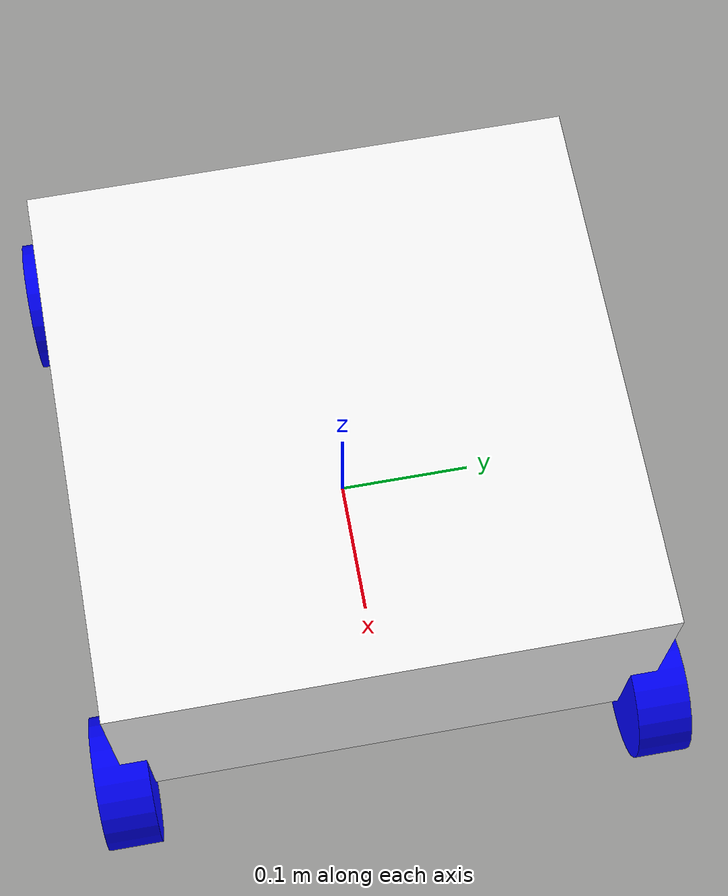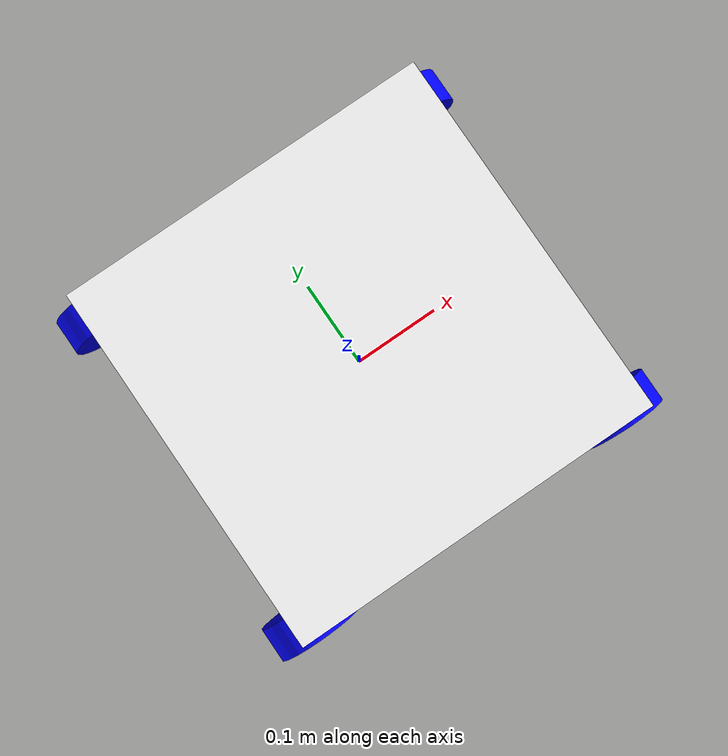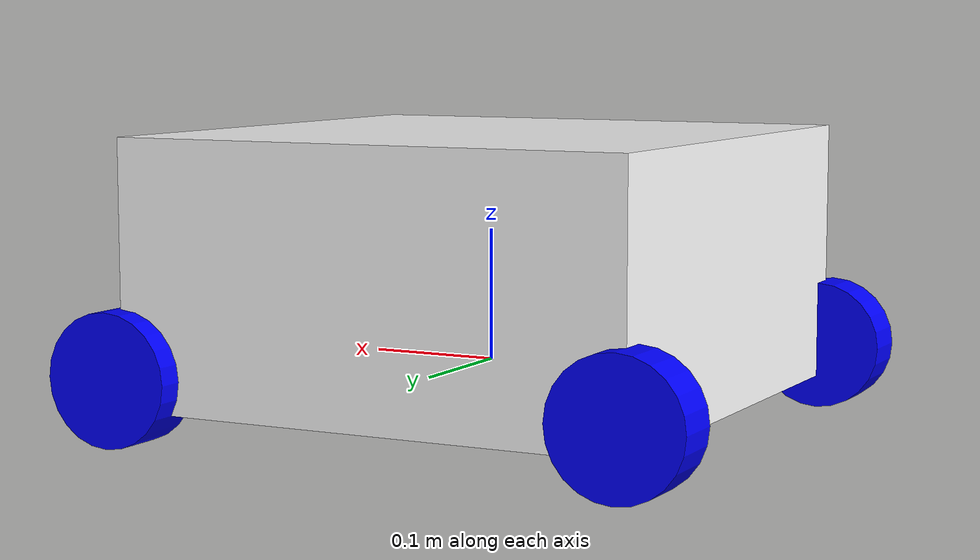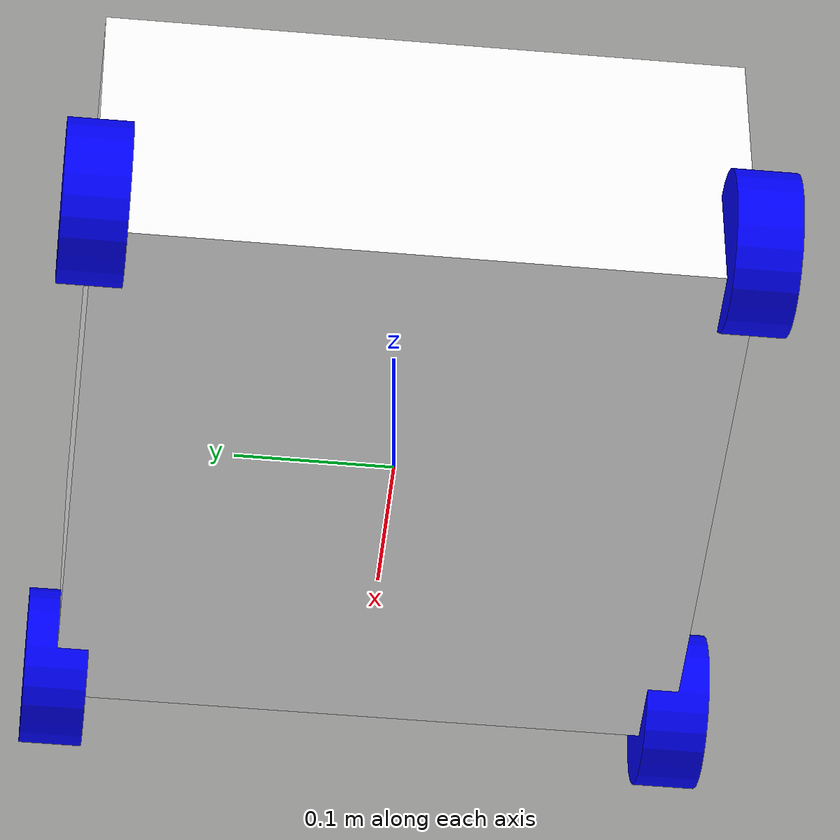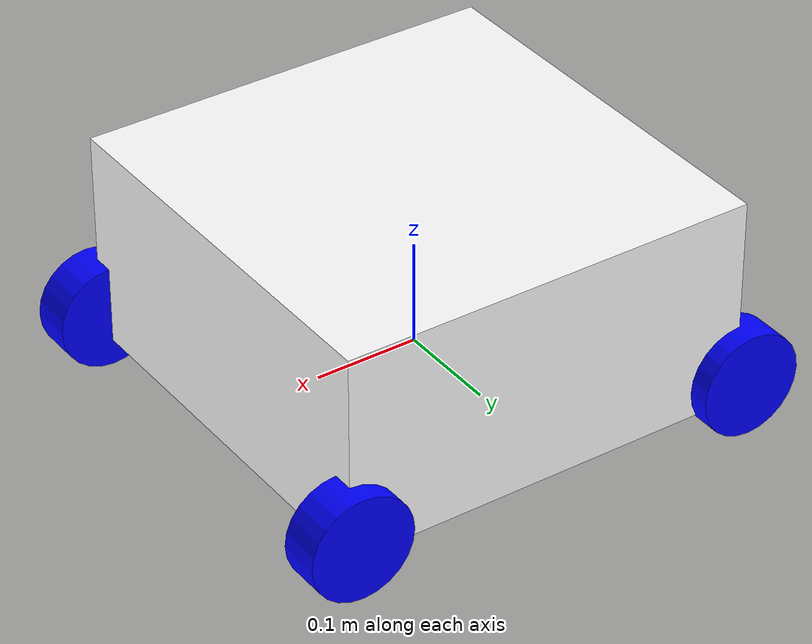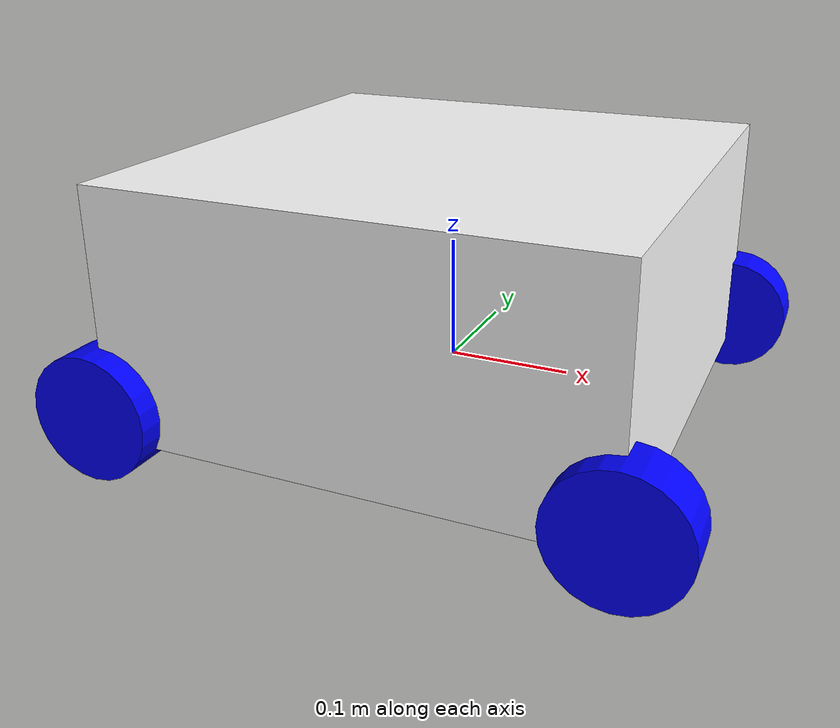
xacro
<?xml version="1.0"?>
<robot xmlns:xacro="http://www.ros.org/wiki/xacro">

<material name="white">
    <color rgba="1 1 1 1"/>
</material>

<material name="black">
    <color rgba="0 0 0 1"/>
</material>

<material name="red">
    <color rgba="1 0 0 1"/>
</material>

<material name="green">
    <color rgba="0 1 0 1"/>
</material>

<material name="blue">
    <color rgba="0 0 1 1"/>
</material>

<material name="yellow">
    <color rgba="1 1 0 1"/>
</material>

<!-- Base Link -->

<link name="base_link">

</link>

<!-- Base Footprint-->

<joint name="base_footprint_joint" type="fixed">
    <parent link="base_link"/>
    <child link="base_footprint"/>
    <origin xyz="0 0 0" rpy="0 0 0"/>
</joint>

<link name="base_footprint">
</link>

<!-- Chassis Link -->

<joint name="chassis_joint" type="fixed">
    <parent link="base_link"/>
    <child link="chassis"/>
    <origin xyz="0 0 0" rpy="0 0 0"/>
</joint>

<link name="chassis">
    <visual>
        <origin xyz="0 0 0.075" rpy="0 0 0"/>
        <geometry>
            <box size="0.4 0.4 0.2"/>
        </geometry>
        <material name="white"/>
    </visual>
</link>

<!-- Rear Left Wheel -->

<joint name="rear_left_wheel_joint" type="continuous">
    <parent link="base_link"/>
    <child link="rear_left_wheel"/>
    <origin xyz="-0.2 0.2 0" rpy="-${pi/2} 0 0"/>
    <axis xyz="0 0 1"/>
</joint>

<link name="rear_left_wheel">
    <visual>
        <geometry>
            <cylinder radius="0.05" length="0.04"/>
        </geometry>
        <material name="blue"/>
    </visual>
</link>

<!-- Rear Right Wheel -->

<joint name="rear_right_wheel_joint" type="continuous">
    <parent link="base_link"/>
    <child link="rear_right_wheel"/>
    <origin xyz="-0.2 -0.2 0" rpy="${pi/2} 0 0"/>
    <axis xyz="0 0 -1"/>
</joint>

<link name="rear_right_wheel">
    <visual>
        <geometry>
            <cylinder radius="0.05" length="0.04"/>
        </geometry>
        <material name="blue"/>
    </visual>
</link>

<!-- Front Left Wheel -->

<joint name="front_left_wheel_joint" type="continuous">
    <parent link="base_link"/>
    <child link="front_left_wheel"/>
    <origin xyz="0.2 0.2 0" rpy="-${pi/2} 0 0"/>
    <axis xyz="0 0 1"/>
</joint>

<link name="front_left_wheel">
    <visual>
        <geometry>
            <cylinder radius="0.05" length="0.04"/>
        </geometry>
        <material name="blue"/>
    </visual>
</link>

<!-- Front Right Wheel -->

<joint name="front_right_wheel_joint" type="continuous">
    <parent link="base_link"/>
    <child link="front_right_wheel"/>
    <origin xyz="0.2 -0.2 0" rpy="${pi/2} 0 0"/>
    <axis xyz="0 0 -1"/>
</joint>

<link name="front_right_wheel">
    <visual>
        <geometry>
            <cylinder radius="0.05" length="0.04"/>
        </geometry>
        <material name="blue"/>
    </visual>
</link>

</robot>
